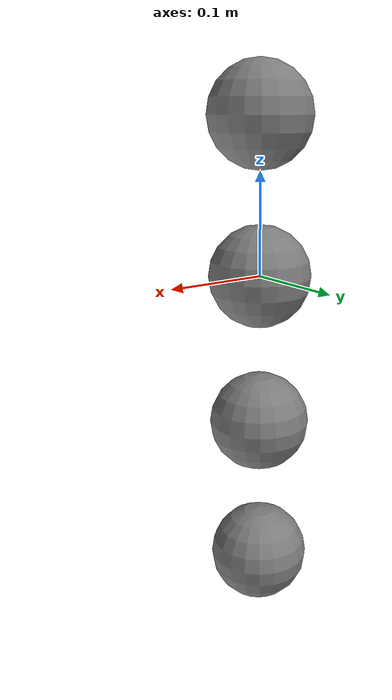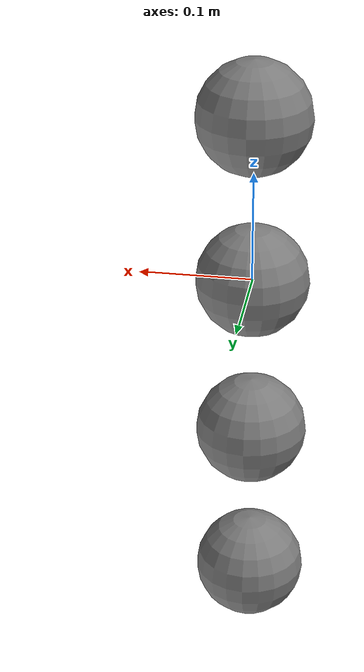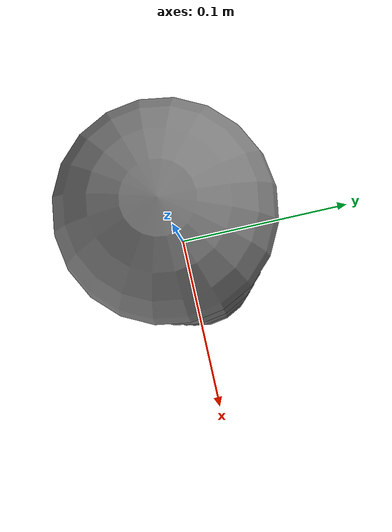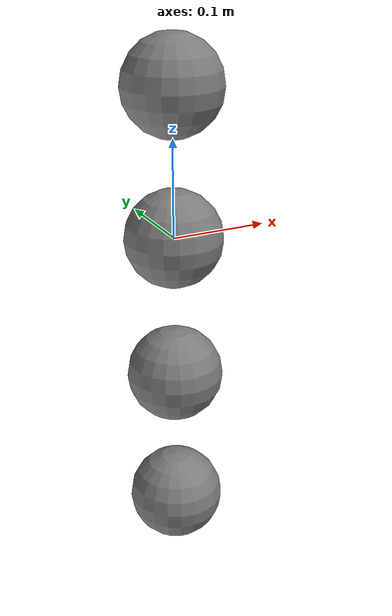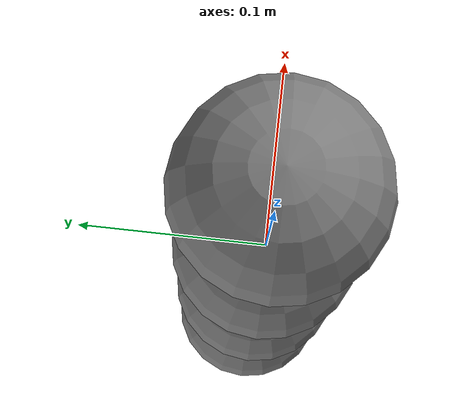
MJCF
<mujoco>
  <visual>
    <global elevation="0"/>
  </visual>

  <default>
    <position ctrlrange="-.2 .2"/>
    <joint axis="1 0 0" type="slide"/>
  </default>

  <option integrator="implicitfast"/>

  <worldbody>
    <light pos="0 0 2"/>

    <body pos="0 0 .15">
      <joint name="0"/>
      <geom size=".05"/>
    </body>

    <body>
      <joint name="1"/>
      <geom mass="1" size=".05"/>
    </body>

    <body pos="0 0 -.15">
      <joint name="2"/>
      <geom mass="1" size=".05"/>
    </body>

    <body pos="0 0 -.3">
      <joint name="3"/>
      <geom mass="1" size=".05"/>
    </body>
  </worldbody>

  <actuator>
    <position name="r=1/3"          joint="0" dampratio=".333" kp="10"/>
    <position name="r=1"            joint="1" dampratio="1"    kp="10"/>
    <position name="r=3"            joint="2" dampratio="3"    kp="10"/>
    <!-- transmission increased by 10: reduce kp by 10^2 -->
    <position name="r=1, g=10"      joint="3" dampratio="1"    kp=".1" gear="10" ctrlrange="-2 2"/>
  </actuator>
</mujoco>
